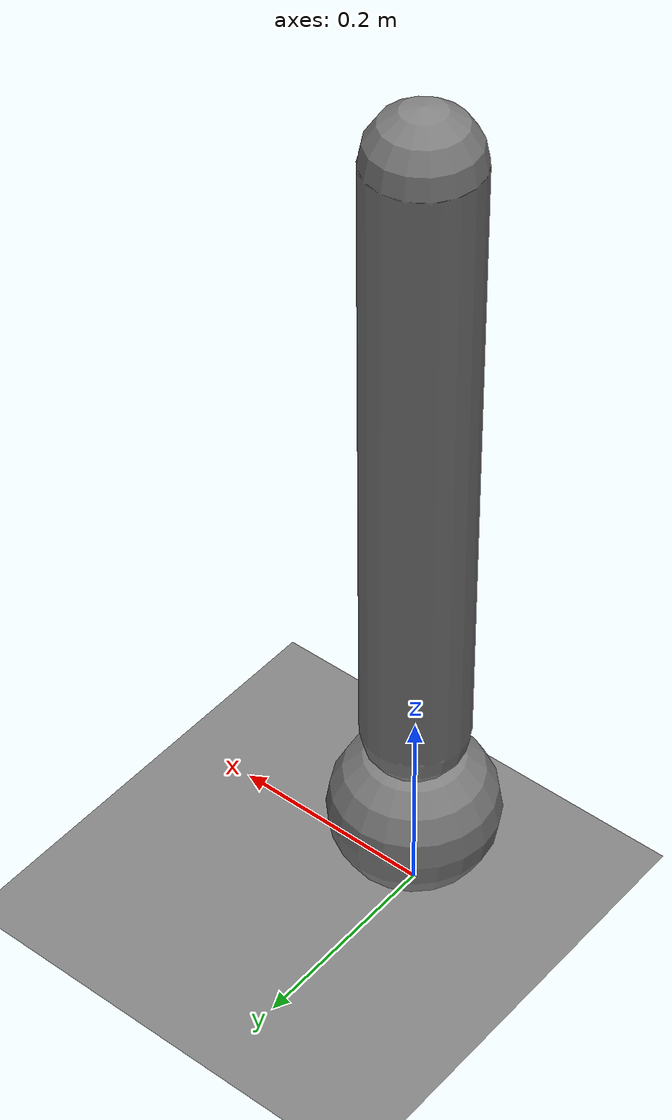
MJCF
<mujoco model="pgs_combined">
            <option gravity="0 0 -9.81" timestep="0.002" solver="PGS" iterations="50"/>
            <worldbody>
                <body name="arm" pos="0 0 0.5">
                    <joint type="hinge" axis="0 1 0" frictionloss="0.5"/>
                    <geom type="capsule" size="0.05 0.3" mass="1.0" friction="0.8 0.003 0.0001"/>
                    <body name="ball" pos="0 0 -0.4">
                        <joint type="hinge" axis="0 1 0" frictionloss="0.3"/>
                        <geom type="sphere" size="0.08" mass="0.5" friction="0.8 0.003 0.0001"/>
                    </body>
                </body>
                <geom type="plane" size="5 5 0.1" friction="0.8 0.003 0.0001"/>
            </worldbody>
        </mujoco>
